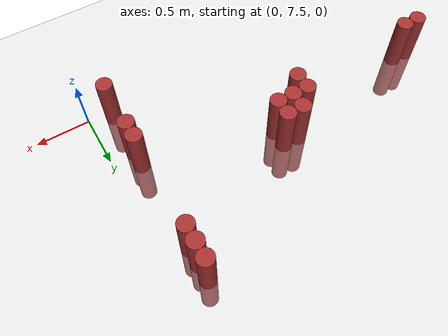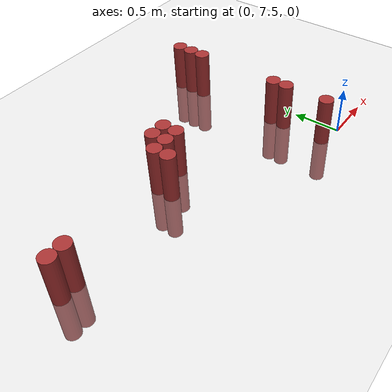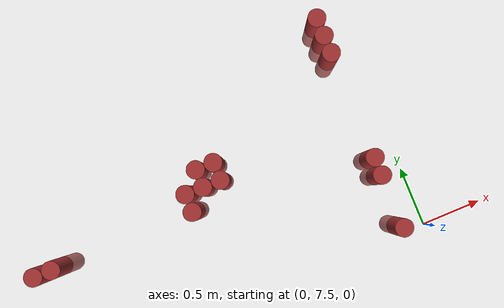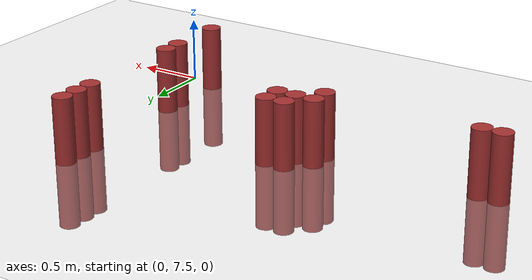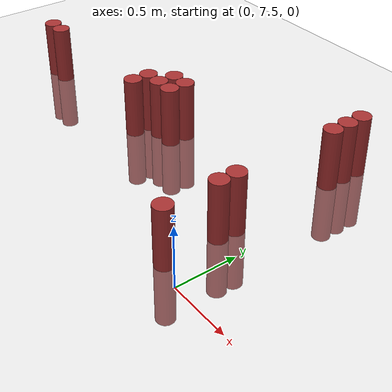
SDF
<sdf version="1.6">
 <world name="default">
  <model name="ground_plane">
   <static>1</static>
   <link name="link">
    <collision name="collision">
     <geometry><plane><normal>0 0 1</normal><size>100 100</size></plane></geometry>
     <surface><friction><ode><mu>100</mu><mu2>50</mu2></ode></friction></surface>
    </collision>
    <visual name="visual">
     <cast_shadows>0</cast_shadows>
     <geometry><plane><normal>0 0 1</normal><size>100 100</size></plane></geometry>
     <material>
      <script><uri>file://media/materials/scripts/gazebo.material</uri><name>Gazebo/Grey</name></script>
     </material>
    </visual>
   </link>
  </model>
  <model name="unit_cylinder_163">
   <static>1</static>
   <pose>-3.075000 8.325000 0.000000 0.000000 0.000000 0.000000</pose>
   <link name="link">
    <inertial>
     <mass>1</mass>
     <inertia><ixx>0.145833</ixx><ixy>0</ixy><ixz>0</ixz><iyy>0.145833</iyy><iyz>0</iyz><izz>0.125</izz></inertia>
    </inertial>
    <collision name="collision">
     <geometry><cylinder><radius>0.075000</radius><length>1</length></cylinder></geometry>
    </collision>
    <visual name="visual">
     <geometry><cylinder><radius>0.075000</radius><length>1</length></cylinder></geometry>
     <material>
      <ambient>0.648000 0.192000 0.192000 1</ambient>
      <diffuse>0.648000 0.192000 0.192000 1</diffuse>
     </material>
     <material>
      <script><name>Gazebo/Grey</name><uri>file://media/materials/scripts/gazebo.material</uri></script>
     </material>
    </visual>
   </link>
  </model>
  <model name="unit_cylinder_164">
   <static>1</static>
   <pose>-2.925000 8.325000 0.000000 0.000000 0.000000 0.000000</pose>
   <link name="link">
    <inertial>
     <mass>1</mass>
     <inertia><ixx>0.145833</ixx><ixy>0</ixy><ixz>0</ixz><iyy>0.145833</iyy><iyz>0</iyz><izz>0.125</izz></inertia>
    </inertial>
    <collision name="collision">
     <geometry><cylinder><radius>0.075000</radius><length>1</length></cylinder></geometry>
    </collision>
    <visual name="visual">
     <geometry><cylinder><radius>0.075000</radius><length>1</length></cylinder></geometry>
     <material>
      <ambient>0.648000 0.192000 0.192000 1</ambient>
      <diffuse>0.648000 0.192000 0.192000 1</diffuse>
     </material>
     <material>
      <script><name>Gazebo/Grey</name><uri>file://media/materials/scripts/gazebo.material</uri></script>
     </material>
    </visual>
   </link>
  </model>
  <model name="unit_cylinder_175">
   <static>1</static>
   <pose>-1.725000 8.325000 0.000000 0.000000 0.000000 0.000000</pose>
   <link name="link">
    <inertial>
     <mass>1</mass>
     <inertia><ixx>0.145833</ixx><ixy>0</ixy><ixz>0</ixz><iyy>0.145833</iyy><iyz>0</iyz><izz>0.125</izz></inertia>
    </inertial>
    <collision name="collision">
     <geometry><cylinder><radius>0.075000</radius><length>1</length></cylinder></geometry>
    </collision>
    <visual name="visual">
     <geometry><cylinder><radius>0.075000</radius><length>1</length></cylinder></geometry>
     <material>
      <ambient>0.648000 0.192000 0.192000 1</ambient>
      <diffuse>0.648000 0.192000 0.192000 1</diffuse>
     </material>
     <material>
      <script><name>Gazebo/Grey</name><uri>file://media/materials/scripts/gazebo.material</uri></script>
     </material>
    </visual>
   </link>
  </model>
  <model name="unit_cylinder_176">
   <static>1</static>
   <pose>-1.725000 8.475000 0.000000 0.000000 0.000000 0.000000</pose>
   <link name="link">
    <inertial>
     <mass>1</mass>
     <inertia><ixx>0.145833</ixx><ixy>0</ixy><ixz>0</ixz><iyy>0.145833</iyy><iyz>0</iyz><izz>0.125</izz></inertia>
    </inertial>
    <collision name="collision">
     <geometry><cylinder><radius>0.075000</radius><length>1</length></cylinder></geometry>
    </collision>
    <visual name="visual">
     <geometry><cylinder><radius>0.075000</radius><length>1</length></cylinder></geometry>
     <material>
      <ambient>0.648000 0.192000 0.192000 1</ambient>
      <diffuse>0.648000 0.192000 0.192000 1</diffuse>
     </material>
     <material>
      <script><name>Gazebo/Grey</name><uri>file://media/materials/scripts/gazebo.material</uri></script>
     </material>
    </visual>
   </link>
  </model>
  <model name="unit_cylinder_177">
   <static>1</static>
   <pose>-1.575000 8.475000 0.000000 0.000000 0.000000 0.000000</pose>
   <link name="link">
    <inertial>
     <mass>1</mass>
     <inertia><ixx>0.145833</ixx><ixy>0</ixy><ixz>0</ixz><iyy>0.145833</iyy><iyz>0</iyz><izz>0.125</izz></inertia>
    </inertial>
    <collision name="collision">
     <geometry><cylinder><radius>0.075000</radius><length>1</length></cylinder></geometry>
    </collision>
    <visual name="visual">
     <geometry><cylinder><radius>0.075000</radius><length>1</length></cylinder></geometry>
     <material>
      <ambient>0.648000 0.192000 0.192000 1</ambient>
      <diffuse>0.648000 0.192000 0.192000 1</diffuse>
     </material>
     <material>
      <script><name>Gazebo/Grey</name><uri>file://media/materials/scripts/gazebo.material</uri></script>
     </material>
    </visual>
   </link>
  </model>
  <model name="unit_cylinder_178">
   <static>1</static>
   <pose>-1.575000 8.625000 0.000000 0.000000 0.000000 0.000000</pose>
   <link name="link">
    <inertial>
     <mass>1</mass>
     <inertia><ixx>0.145833</ixx><ixy>0</ixy><ixz>0</ixz><iyy>0.145833</iyy><iyz>0</iyz><izz>0.125</izz></inertia>
    </inertial>
    <collision name="collision">
     <geometry><cylinder><radius>0.075000</radius><length>1</length></cylinder></geometry>
    </collision>
    <visual name="visual">
     <geometry><cylinder><radius>0.075000</radius><length>1</length></cylinder></geometry>
     <material>
      <ambient>0.648000 0.192000 0.192000 1</ambient>
      <diffuse>0.648000 0.192000 0.192000 1</diffuse>
     </material>
     <material>
      <script><name>Gazebo/Grey</name><uri>file://media/materials/scripts/gazebo.material</uri></script>
     </material>
    </visual>
   </link>
  </model>
  <model name="unit_cylinder_179">
   <static>1</static>
   <pose>-1.425000 8.475000 0.000000 0.000000 0.000000 0.000000</pose>
   <link name="link">
    <inertial>
     <mass>1</mass>
     <inertia><ixx>0.145833</ixx><ixy>0</ixy><ixz>0</ixz><iyy>0.145833</iyy><iyz>0</iyz><izz>0.125</izz></inertia>
    </inertial>
    <collision name="collision">
     <geometry><cylinder><radius>0.075000</radius><length>1</length></cylinder></geometry>
    </collision>
    <visual name="visual">
     <geometry><cylinder><radius>0.075000</radius><length>1</length></cylinder></geometry>
     <material>
      <ambient>0.648000 0.192000 0.192000 1</ambient>
      <diffuse>0.648000 0.192000 0.192000 1</diffuse>
     </material>
     <material>
      <script><name>Gazebo/Grey</name><uri>file://media/materials/scripts/gazebo.material</uri></script>
     </material>
    </visual>
   </link>
  </model>
  <model name="unit_cylinder_180">
   <static>1</static>
   <pose>-1.425000 8.625000 0.000000 0.000000 0.000000 0.000000</pose>
   <link name="link">
    <inertial>
     <mass>1</mass>
     <inertia><ixx>0.145833</ixx><ixy>0</ixy><ixz>0</ixz><iyy>0.145833</iyy><iyz>0</iyz><izz>0.125</izz></inertia>
    </inertial>
    <collision name="collision">
     <geometry><cylinder><radius>0.075000</radius><length>1</length></cylinder></geometry>
    </collision>
    <visual name="visual">
     <geometry><cylinder><radius>0.075000</radius><length>1</length></cylinder></geometry>
     <material>
      <ambient>0.648000 0.192000 0.192000 1</ambient>
      <diffuse>0.648000 0.192000 0.192000 1</diffuse>
     </material>
     <material>
      <script><name>Gazebo/Grey</name><uri>file://media/materials/scripts/gazebo.material</uri></script>
     </material>
    </visual>
   </link>
  </model>
  <model name="unit_cylinder_191">
   <static>1</static>
   <pose>-0.225000 7.575000 0.000000 0.000000 0.000000 0.000000</pose>
   <link name="link">
    <inertial>
     <mass>1</mass>
     <inertia><ixx>0.145833</ixx><ixy>0</ixy><ixz>0</ixz><iyy>0.145833</iyy><iyz>0</iyz><izz>0.125</izz></inertia>
    </inertial>
    <collision name="collision">
     <geometry><cylinder><radius>0.075000</radius><length>1</length></cylinder></geometry>
    </collision>
    <visual name="visual">
     <geometry><cylinder><radius>0.075000</radius><length>1</length></cylinder></geometry>
     <material>
      <ambient>0.648000 0.192000 0.192000 1</ambient>
      <diffuse>0.648000 0.192000 0.192000 1</diffuse>
     </material>
     <material>
      <script><name>Gazebo/Grey</name><uri>file://media/materials/scripts/gazebo.material</uri></script>
     </material>
    </visual>
   </link>
  </model>
  <model name="unit_cylinder_192">
   <static>1</static>
   <pose>-0.225000 8.025000 0.000000 0.000000 0.000000 0.000000</pose>
   <link name="link">
    <inertial>
     <mass>1</mass>
     <inertia><ixx>0.145833</ixx><ixy>0</ixy><ixz>0</ixz><iyy>0.145833</iyy><iyz>0</iyz><izz>0.125</izz></inertia>
    </inertial>
    <collision name="collision">
     <geometry><cylinder><radius>0.075000</radius><length>1</length></cylinder></geometry>
    </collision>
    <visual name="visual">
     <geometry><cylinder><radius>0.075000</radius><length>1</length></cylinder></geometry>
     <material>
      <ambient>0.648000 0.192000 0.192000 1</ambient>
      <diffuse>0.648000 0.192000 0.192000 1</diffuse>
     </material>
     <material>
      <script><name>Gazebo/Grey</name><uri>file://media/materials/scripts/gazebo.material</uri></script>
     </material>
    </visual>
   </link>
  </model>
  <model name="unit_cylinder_193">
   <static>1</static>
   <pose>-0.225000 8.175000 0.000000 0.000000 0.000000 0.000000</pose>
   <link name="link">
    <inertial>
     <mass>1</mass>
     <inertia><ixx>0.145833</ixx><ixy>0</ixy><ixz>0</ixz><iyy>0.145833</iyy><iyz>0</iyz><izz>0.125</izz></inertia>
    </inertial>
    <collision name="collision">
     <geometry><cylinder><radius>0.075000</radius><length>1</length></cylinder></geometry>
    </collision>
    <visual name="visual">
     <geometry><cylinder><radius>0.075000</radius><length>1</length></cylinder></geometry>
     <material>
      <ambient>0.648000 0.192000 0.192000 1</ambient>
      <diffuse>0.648000 0.192000 0.192000 1</diffuse>
     </material>
     <material>
      <script><name>Gazebo/Grey</name><uri>file://media/materials/scripts/gazebo.material</uri></script>
     </material>
    </visual>
   </link>
  </model>
  <model name="unit_cylinder_194">
   <static>1</static>
   <pose>-0.225000 9.075000 0.000000 0.000000 0.000000 0.000000</pose>
   <link name="link">
    <inertial>
     <mass>1</mass>
     <inertia><ixx>0.145833</ixx><ixy>0</ixy><ixz>0</ixz><iyy>0.145833</iyy><iyz>0</iyz><izz>0.125</izz></inertia>
    </inertial>
    <collision name="collision">
     <geometry><cylinder><radius>0.075000</radius><length>1</length></cylinder></geometry>
    </collision>
    <visual name="visual">
     <geometry><cylinder><radius>0.075000</radius><length>1</length></cylinder></geometry>
     <material>
      <ambient>0.648000 0.192000 0.192000 1</ambient>
      <diffuse>0.648000 0.192000 0.192000 1</diffuse>
     </material>
     <material>
      <script><name>Gazebo/Grey</name><uri>file://media/materials/scripts/gazebo.material</uri></script>
     </material>
    </visual>
   </link>
  </model>
  <model name="unit_cylinder_195">
   <static>1</static>
   <pose>-0.225000 9.225000 0.000000 0.000000 0.000000 0.000000</pose>
   <link name="link">
    <inertial>
     <mass>1</mass>
     <inertia><ixx>0.145833</ixx><ixy>0</ixy><ixz>0</ixz><iyy>0.145833</iyy><iyz>0</iyz><izz>0.125</izz></inertia>
    </inertial>
    <collision name="collision">
     <geometry><cylinder><radius>0.075000</radius><length>1</length></cylinder></geometry>
    </collision>
    <visual name="visual">
     <geometry><cylinder><radius>0.075000</radius><length>1</length></cylinder></geometry>
     <material>
      <ambient>0.648000 0.192000 0.192000 1</ambient>
      <diffuse>0.648000 0.192000 0.192000 1</diffuse>
     </material>
     <material>
      <script><name>Gazebo/Grey</name><uri>file://media/materials/scripts/gazebo.material</uri></script>
     </material>
    </visual>
   </link>
  </model>
  <model name="unit_cylinder_196">
   <static>1</static>
   <pose>-0.225000 9.375000 0.000000 0.000000 0.000000 0.000000</pose>
   <link name="link">
    <inertial>
     <mass>1</mass>
     <inertia><ixx>0.145833</ixx><ixy>0</ixy><ixz>0</ixz><iyy>0.145833</iyy><iyz>0</iyz><izz>0.125</izz></inertia>
    </inertial>
    <collision name="collision">
     <geometry><cylinder><radius>0.075000</radius><length>1</length></cylinder></geometry>
    </collision>
    <visual name="visual">
     <geometry><cylinder><radius>0.075000</radius><length>1</length></cylinder></geometry>
     <material>
      <ambient>0.648000 0.192000 0.192000 1</ambient>
      <diffuse>0.648000 0.192000 0.192000 1</diffuse>
     </material>
     <material>
      <script><name>Gazebo/Grey</name><uri>file://media/materials/scripts/gazebo.material</uri></script>
     </material>
    </visual>
   </link>
  </model>
 </world>
</sdf>
